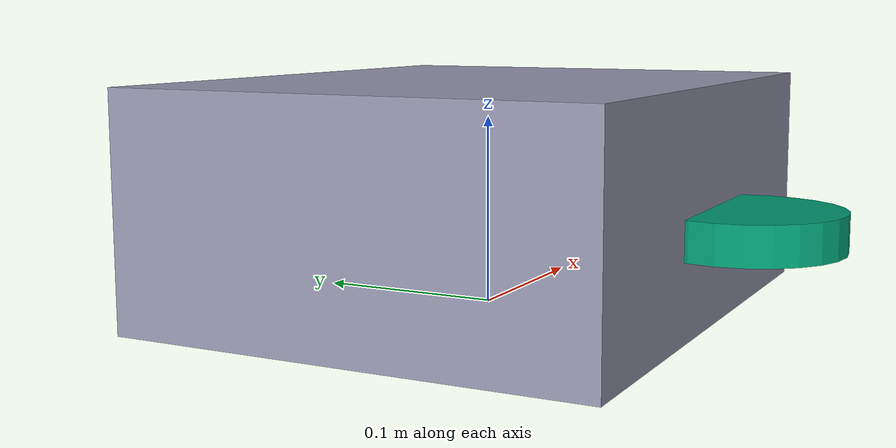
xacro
<?xml version="1.0"?>
<robot name="diffbot" xmlns:xacro="http://www.ros.org/wiki/xacro">
  <xacro:property name="wheel_radius" value="0.05"/>
  <xacro:property name="wheel_sep"    value="0.28"/>
  <xacro:property name="body_len"     value="0.30"/>
  <xacro:property name="body_w"       value="0.25"/>
  <xacro:property name="body_h"       value="0.12"/>
  <link name="base_link">
    <inertial><origin xyz="0 0 0.05"/><mass value="4.0"/>
      <inertia ixx="0.05" ixy="0" ixz="0" iyy="0.08" iyz="0" izz="0.09"/></inertial>
    <visual><origin xyz="0 0 ${body_h/2}"/>
      <geometry><box size="${body_len} ${body_w} ${body_h}"/></geometry>
      <material name="grey"><color rgba="0.6 0.6 0.7 1"/></material></visual>
    <collision><origin xyz="0 0 ${body_h/2}"/>
      <geometry><box size="${body_len} ${body_w} ${body_h}"/></geometry></collision>
  </link>
  <link name="left_wheel">
    <inertial><origin xyz="0 0 0"/><mass value="0.2"/>
      <inertia ixx="0.001" ixy="0" ixz="0" iyy="0.001" iyz="0" izz="0.001"/></inertial>
    <visual><geometry><cylinder length="0.02" radius="${wheel_radius}"/></geometry></visual>
    <collision><geometry><cylinder length="0.02" radius="${wheel_radius}"/></geometry></collision>
  </link>
  <link name="right_wheel">
    <inertial><origin xyz="0 0 0"/><mass value="0.2"/>
      <inertia ixx="0.001" ixy="0" ixz="0" iyy="0.001" iyz="0" izz="0.001"/></inertial>
    <visual><geometry><cylinder length="0.02" radius="${wheel_radius}"/></geometry></visual>
    <collision><geometry><cylinder length="0.02" radius="${wheel_radius}"/></geometry></collision>
  </link>
  <joint name="left_wheel_joint" type="continuous">
    <parent link="base_link"/><child link="left_wheel"/>
    <origin xyz="0 ${wheel_sep/2} ${wheel_radius}"/><axis xyz="0 1 0"/>
  </joint>
  <joint name="right_wheel_joint" type="continuous">
    <parent link="base_link"/><child link="right_wheel"/>
    <origin xyz="0 -${wheel_sep/2} ${wheel_radius}"/><axis xyz="0 -1 0"/>
  </joint>
  <gazebo>
    <plugin filename="libgz-sim-diff-drive-system.so" name="gz::sim::systems::DiffDrive">
      <left_joint>left_wheel_joint</left_joint>
      <right_joint>right_wheel_joint</right_joint>
      <wheel_separation>${wheel_sep}</wheel_separation>
      <wheel_radius>${wheel_radius}</wheel_radius>
      <odom_frame>odom</odom_frame>
      <base_frame>base_link</base_frame>
      <topic>cmd_vel</topic>
      <odom_topic>odom</odom_topic>
    </plugin>
    <plugin filename="libgz-sim-joint-state-publisher-system.so" name="gz::sim::systems::JointStatePublisher"/>
  </gazebo>
</robot>
